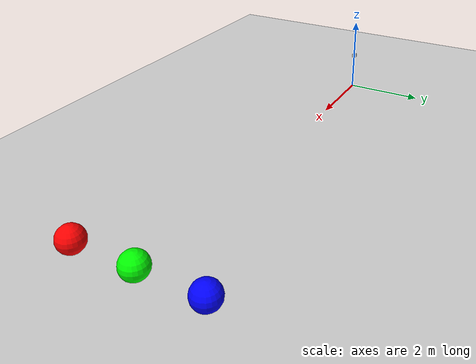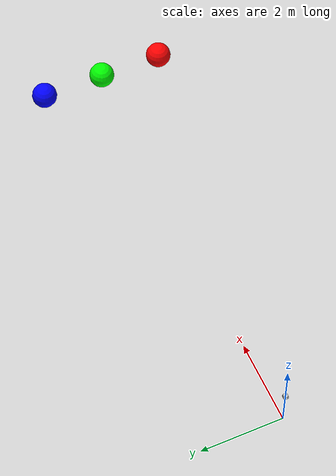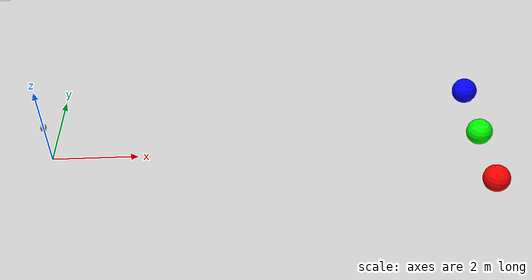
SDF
<?xml version="1.0" ?>
<sdf version="1.6">
  <world name="camera_zoom_demo">
    <physics name="1ms" type="ignored">
      <max_step_size>0.001</max_step_size>
      <real_time_factor>1.0</real_time_factor>
    </physics>
    <plugin
      filename="gz-sim-physics-system"
      name="gz::sim::systems::Physics">
    </plugin>
    <plugin
      filename="gz-sim-sensors-system"
      name="gz::sim::systems::Sensors">
      <render_engine>ogre2</render_engine>
    </plugin>
    <plugin
      filename="gz-sim-user-commands-system"
      name="gz::sim::systems::UserCommands">
    </plugin>
    <plugin
      filename="gz-sim-scene-broadcaster-system"
      name="gz::sim::systems::SceneBroadcaster">
    </plugin>

    <scene>
      <ambient>1.0 1.0 1.0</ambient>
      <background>0.8 0.8 0.8</background>
      <grid>true</grid>
    </scene>

    <gui fullscreen="0">
      <plugin filename="MinimalScene" name="3D View">
        <gz-gui>
          <title>3D View</title>
          <property type="bool" key="showTitleBar">false</property>
          <property type="string" key="state">docked</property>
        </gz-gui>
        <engine>ogre2</engine>
        <scene>scene</scene>
        <ambient_light>0.4 0.4 0.4</ambient_light>
        <background_color>0.8 0.8 0.8</background_color>
        <camera_pose>-6 0 6 0 0.5 0</camera_pose>
      </plugin>
      <plugin filename="InteractiveViewControl" name="Interactive view control">
        <gz-gui>
          <property key="resizable" type="bool">false</property>
          <property key="width" type="double">5</property>
          <property key="height" type="double">5</property>
          <property key="state" type="string">floating</property>
          <property key="showTitleBar" type="bool">false</property>
        </gz-gui>
      </plugin>
      <plugin filename="WorldControl" name="World control">
        <gz-gui>
          <title>World control</title>
          <property type="bool" key="showTitleBar">false</property>
          <property type="bool" key="resizable">false</property>
          <property type="double" key="height">72</property>
          <property type="double" key="z">1</property>
          <property type="string" key="state">floating</property>
          <anchors target="3D View">
            <line own="left" target="left"/>
            <line own="bottom" target="bottom"/>
          </anchors>
        </gz-gui>
        <play_pause>true</play_pause>
        <step>true</step>
        <use_event>true</use_event>
      </plugin>
      <plugin filename="ImageDisplay" name="Image Display">
        <gz-gui>
          <property key="state" type="string">docked</property>
        </gz-gui>
        <topic>camera/image</topic>
      </plugin>
    </gui>

    <light type="directional" name="sun">
      <cast_shadows>true</cast_shadows>
      <pose>0 0 10 0 0 0</pose>
      <diffuse>0.8 0.8 0.8 1</diffuse>
      <specular>0.8 0.8 0.8 1</specular>
      <attenuation>
        <range>1000</range>
        <constant>0.9</constant>
        <linear>0.01</linear>
        <quadratic>0.001</quadratic>
      </attenuation>
      <direction>-0.5 0.1 -0.9</direction>
    </light>

    <model name="ground_plane">
      <static>true</static>
      <link name="link">
        <collision name="collision">
          <geometry>
            <plane>
              <normal>0 0 1</normal>
              <size>100 100</size>
            </plane>
          </geometry>
        </collision>
        <visual name="visual">
          <geometry>
            <plane>
              <normal>0 0 1</normal>
              <size>100 100</size>
            </plane>
          </geometry>
          <material>
            <ambient>0.8 0.8 0.8 1</ambient>
            <diffuse>0.8 0.8 0.8 1</diffuse>
            <specular>0.8 0.8 0.8 1</specular>
          </material>
        </visual>
      </link>
    </model>

    <model name="target_red">
      <static>true</static>
      <pose>10 -1.5 0.5 0 0 0</pose>
      <link name="link">
        <visual name="visual">
          <geometry>
            <sphere><radius>0.3</radius></sphere>
          </geometry>
          <material>
            <ambient>1 0 0 1</ambient>
            <diffuse>1 0 0 1</diffuse>
          </material>
        </visual>
      </link>
    </model>

    <model name="target_green">
      <static>true</static>
      <pose>10 0 0.5 0 0 0</pose>
      <link name="link">
        <visual name="visual">
          <geometry>
            <sphere><radius>0.3</radius></sphere>
          </geometry>
          <material>
            <ambient>0 1 0 1</ambient>
            <diffuse>0 1 0 1</diffuse>
          </material>
        </visual>
      </link>
    </model>

    <model name="target_blue">
      <static>true</static>
      <pose>10 1.5 0.5 0 0 0</pose>
      <link name="link">
        <visual name="visual">
          <geometry>
            <sphere><radius>0.3</radius></sphere>
          </geometry>
          <material>
            <ambient>0 0 1 1</ambient>
            <diffuse>0 0 1 1</diffuse>
          </material>
        </visual>
      </link>
    </model>

    <model name="camera">
      <static>true</static>
      <pose>0 0 1.0 0 0 0</pose>
      <link name="link">
        <visual name="visual">
          <geometry>
            <box><size>0.1 0.1 0.1</size></box>
          </geometry>
        </visual>
        <sensor name="camera" type="camera">
          <camera>
            <!-- Widest (zoomed-out) HFOV. The plugin's max_hfov defaults
                 to this value if not overridden below. -->
            <horizontal_fov>1.047</horizontal_fov>
            <image>
              <width>640</width>
              <height>480</height>
            </image>
            <clip>
              <near>0.1</near>
              <far>100</far>
            </clip>
          </camera>
          <always_on>1</always_on>
          <update_rate>30</update_rate>
          <visualize>true</visualize>
          <topic>camera/image</topic>

          <plugin filename="CameraZoom" name="gz_camera_zoom::CameraZoom">
            <topic>camera/zoom/cmd</topic>
            <camera_info_topic>camera/zoom/camera_info</camera_info_topic>
            <level_topic>camera/zoom/level</level_topic>
            <min_hfov>0.05</min_hfov>
            <max_hfov>1.047</max_hfov>
            <zoom_rate>0.4</zoom_rate>
            <cmd_timeout>2.0</cmd_timeout>
          </plugin>
        </sensor>
      </link>
    </model>

  </world>
</sdf>
